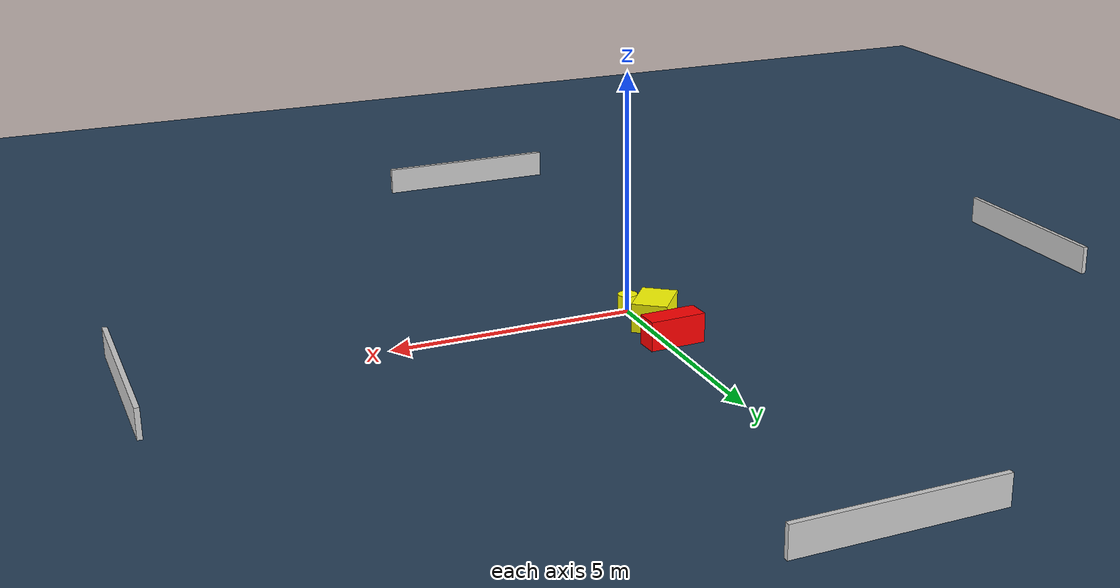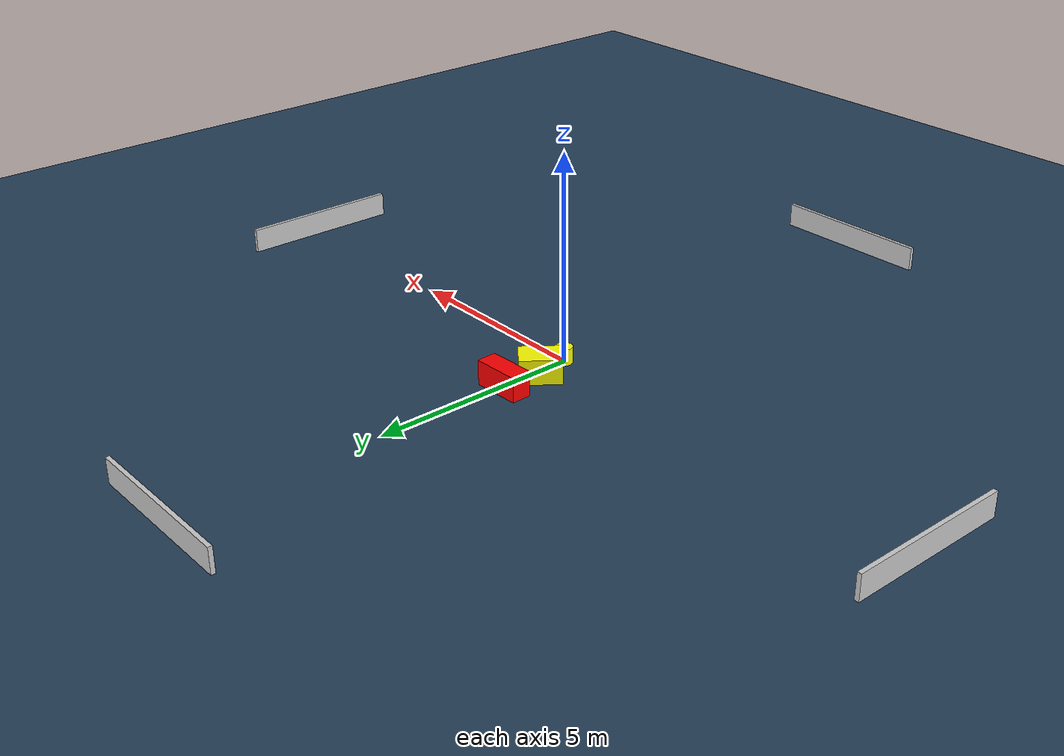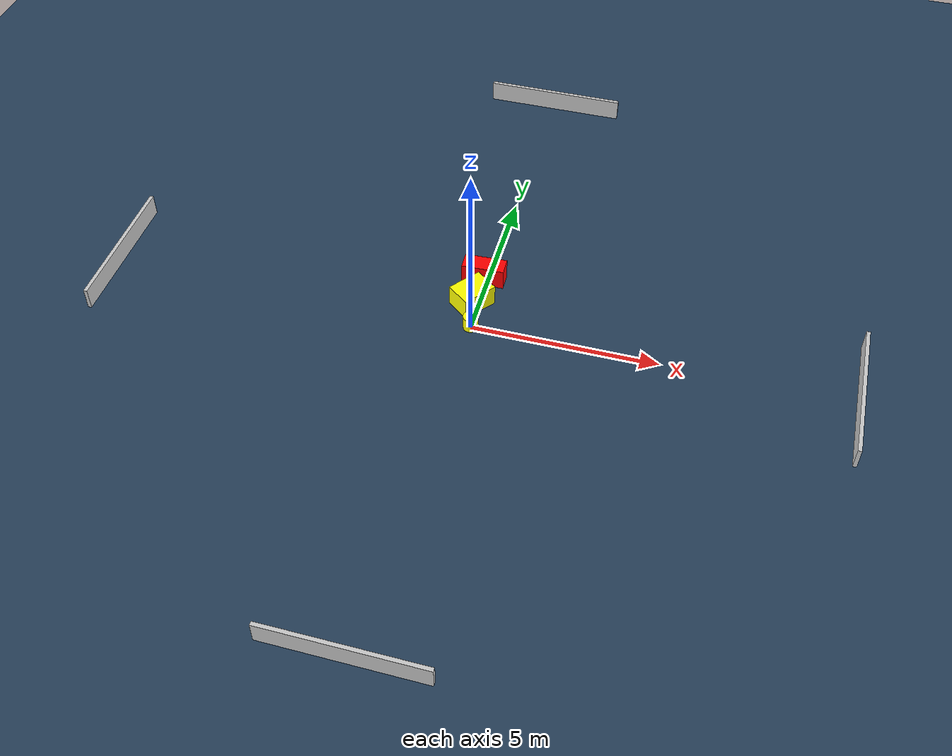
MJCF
<?xml version="1.0" ?>
<mujoco model="generated_environment">
  <option timestep="0.01" integrator="RK4" cone="elliptic"/>
  <default>
    <geom density="1"/>
  </default>
  <asset>
    <texture builtin="gradient" height="3072" name="skybox" rgb1="0.3 0.5 0.7" rgb2="0 0 0" type="skybox" width="512"/>
    <texture builtin="checker" height="300" name="groundplane" rgb1="0.2 0.3 0.4" rgb2="0.1 0.2 0.3" type="2d" width="300"/>
    <material name="groundplane" reflectance="0.2" texrepeat="5 5" texture="groundplane"/>
  </asset>
  <worldbody>
    <light dir="0 0 -1" directional="true" pos="0 0 1.5"/>
    <geom condim="3" friction="0.5 0.005 0.001" material="groundplane" name="floor" pos="0 0 0" size="0 0 0.05" type="plane"/>
    <body name="walls">
      <geom name="wall_1" condim="4" pos="-10.0 0.0 0.3" rgba="0.800000011920929 0.800000011920929 0.800000011920929 1.0" size="0.05 2.0 0.3" type="box"/>
      <geom name="wall_2" condim="4" pos="10.0 0.0 0.3" rgba="0.800000011920929 0.800000011920929 0.800000011920929 1.0" size="0.05 2.0 0.3" type="box"/>
      <geom name="wall_3" condim="4" pos="0.0 -10.0 0.3" rgba="0.800000011920929 0.800000011920929 0.800000011920929 1.0" size="2.0 0.05 0.3" type="box"/>
      <geom name="wall_4" condim="4" pos="0.0 10.0 0.3" rgba="0.800000011920929 0.800000011920929 0.800000011920929 1.0" size="2.0 0.05 0.3" type="box"/>
    </body>
    <body name="robot">
      <joint name="joint_x" type="slide" pos="0 0 0" axis="1 0 0"/>
      <joint name="joint_y" type="slide" pos="0 0 0" axis="0 1 0"/>
      <geom name="robot" type="cylinder" pos="0.0 0.0 0.2" size="0.2 0.2 0.0" mass="5.0" friction="1.0 0.005 0.0001" condim="4" rgba="1.0 1.0 0.0 1.0"/>
    </body>
    <body name="obstacle_1_movable">
      <geom name="obstacle_1_movable" condim="4" pos="-0.19615826795438174 0.871518866299666 0.3" euler="0 0 231.8582758260909" friction="0.0 0.005 0.001" rgba="1.0 1.0 0.0 1.0" size="0.48603404215157714 0.3603519502781316 0.3" type="box" mass="0.1"/>
      <joint type="free"/>
    </body>
    <body name="obstacle_2_static">
      <geom name="obstacle_2_static" condim="4" pos="-0.12322896291917639 1.8420208180207833 0.3" euler="0 0 92.04496988304544" friction="0.0 0.005 0.001" rgba="1.0 0.0 0.0 1.0" size="0.24114093875690118 0.5762988429154863 0.3" type="box"/>
    </body>
  </worldbody>
  <actuator>
    <motor name="actuator_x" joint="joint_x" gear="1" ctrlrange="-1 1"/>
    <motor name="actuator_y" joint="joint_y" gear="1" ctrlrange="-1 1"/>
  </actuator>
</mujoco>
